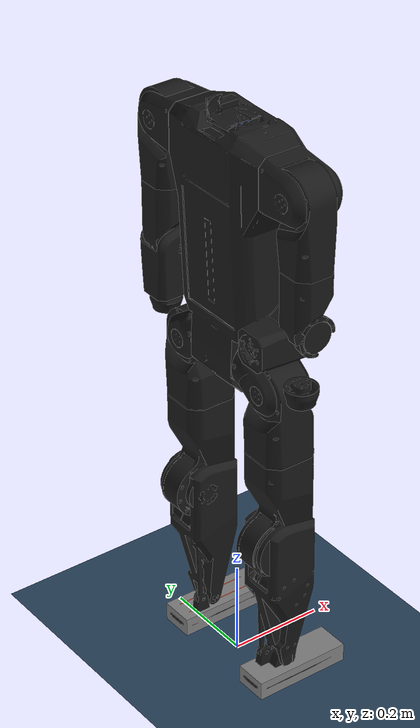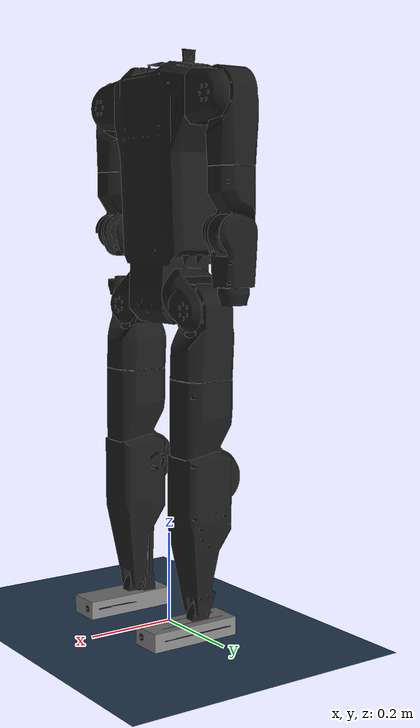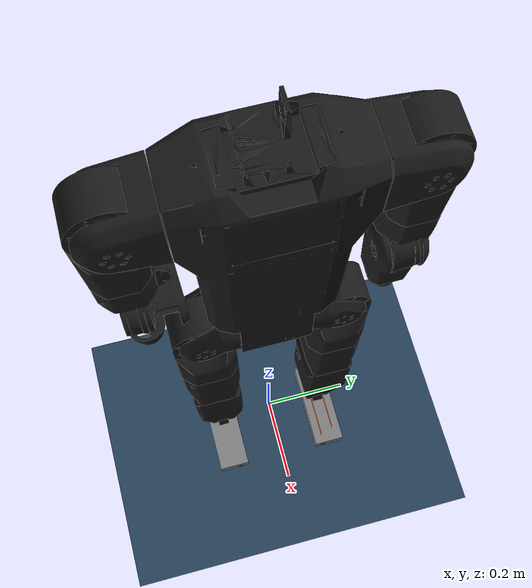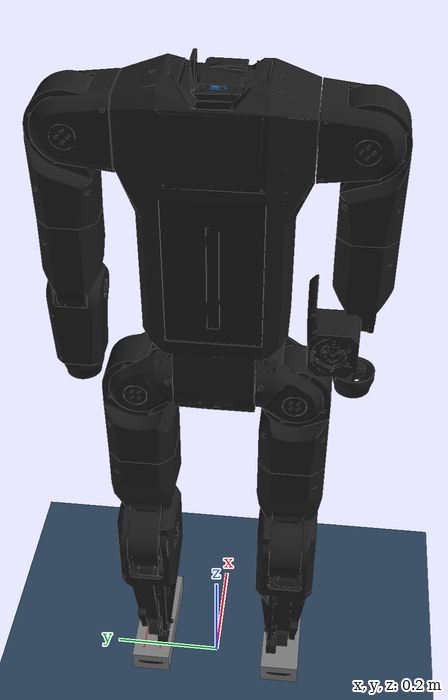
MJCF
<mujoco model="kbot scene">
  <include file="kbot.xml"/>

  <statistic center="1.0 0.7 1.0" extent="0.8"/>

  <visual>
    <headlight diffuse="0.6 0.6 0.6" ambient="0.1 0.1 0.1" specular="0.9 0.9 0.9"/>
    <rgba haze="0.15 0.25 0.35 1"/>
    <global azimuth="-140" elevation="-20"/>
  </visual>

  <asset>
    <texture type="skybox" builtin="flat" rgb1="0 0 0" rgb2="0 0 0" width="512" height="3072"/>
    <texture type="2d" name="groundplane" builtin="checker" mark="edge" rgb1="0.2 0.3 0.4" rgb2="0.1 0.2 0.3" markrgb="0.8 0.8 0.8" width="300" height="300"/>
    <material name="groundplane" texture="groundplane" texuniform="true" texrepeat="5 5" reflectance="0.2"/>
  </asset>

  <worldbody>
    <light pos="1 0 3.5" dir="0 0 -1" directional="true"/>
    <geom name="floor" size="0 0 0.05" type="plane" material="groundplane"/>
  </worldbody>
</mujoco>

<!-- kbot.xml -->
<mujoco model="kbotv2p0_headless">
  <default>
    <default class="robot">
      <default class="robstride_02">
        <joint armature="0.0042" frictionloss="0.1" actuatorfrcrange="-17.0 17.0" />
        <motor ctrlrange="-17.0 17.0" />
      </default>
      <default class="robstride_04">
        <joint armature="0.04" frictionloss="0.2" actuatorfrcrange="-120.0 120.0" />
        <motor ctrlrange="-120.0 120.0" />
      </default>
      <default class="robstride_03">
        <joint armature="0.02" frictionloss="0.2" actuatorfrcrange="-60.0 60.0" />
        <motor ctrlrange="-60.0 60.0" />
      </default>
      <default class="robstride_00">
        <joint armature="0.001" frictionloss="0.1" actuatorfrcrange="-14.0 14.0" />
        <motor ctrlrange="-14.0 14.0" />
      </default>
      <default class="visual">
        <geom material="visualgeom" contype="0" conaffinity="0" group="2" />
      </default>
      <default class="collision">
        <geom material="collision_material" condim="3" contype="0" conaffinity="1" priority="1" group="1" solref="0.005 1" friction="0.64" />
        <equality solimp="0.99 0.999 1e-05" solref="0.005 1" />
      </default>
    </default>
    <mesh maxhullvert="64" />
  </default>

  <compiler angle="radian" />

  <asset>
    <material name="base_material" rgba="1 0 0 1" />
    <material name="Torso_Side_Right_material" rgba="0.098039 0.098039 0.098039 1" />
    <material name="imu_material" rgba="0.231373 0.380392 0.705882 1" />
    <material name="default_material" rgba="0.7 0.7 0.7 1" />
    <material name="collision_material" rgba="1.0 0.28 0.1 0.9" />
    <mesh name="Torso_Side_Right.stl" file="meshes/Torso_Side_Right.stl" />
    <mesh name="KC_C_104R_PitchHardstopDriven.stl" file="meshes/KC_C_104R_PitchHardstopDriven.stl" />
    <mesh name="RS03_3.stl" file="meshes/RS03_3.stl" />
    <mesh name="KC_C_202R.stl" file="meshes/KC_C_202R.stl" />
    <mesh name="KC_C_401R_R_UpForearmDrive.stl" file="meshes/KC_C_401R_R_UpForearmDrive.stl" />
    <mesh name="KB_C_501X_Right_Bayonet_Adapter_Hard_Stop.stl" file="meshes/KB_C_501X_Right_Bayonet_Adapter_Hard_Stop.stl" />
    <mesh name="imu.stl" file="meshes/imu.stl" />
    <mesh name="KC_C_104L_PitchHardstopDriven.stl" file="meshes/KC_C_104L_PitchHardstopDriven.stl" />
    <mesh name="RS03_6.stl" file="meshes/RS03_6.stl" />
    <mesh name="KC_C_202L.stl" file="meshes/KC_C_202L.stl" />
    <mesh name="KC_C_401L_L_UpForearmDrive.stl" file="meshes/KC_C_401L_L_UpForearmDrive.stl" />
    <mesh name="KB_C_501X_Left_Bayonet_Adapter_Hard_Stop.stl" file="meshes/KB_C_501X_Left_Bayonet_Adapter_Hard_Stop.stl" />
    <mesh name="KC_D_102R_R_Hip_Yoke_Drive.stl" file="meshes/KC_D_102R_R_Hip_Yoke_Drive.stl" />
    <mesh name="RS03_4.stl" file="meshes/RS03_4.stl" />
    <mesh name="KC_D_301R_R_Femur_Lower_Drive.stl" file="meshes/KC_D_301R_R_Femur_Lower_Drive.stl" />
    <mesh name="KC_D_401R_R_Shin_Drive.stl" file="meshes/KC_D_401R_R_Shin_Drive.stl" />
    <mesh name="KB_D_501R_R_LEG_FOOT.collision.stl" file="meshes/KB_D_501R_R_LEG_FOOT.collision.stl" />
    <mesh name="KB_D_501R_R_LEG_FOOT.stl" file="meshes/KB_D_501R_R_LEG_FOOT.stl" />
    <mesh name="KC_D_102L_L_Hip_Yoke_Drive.stl" file="meshes/KC_D_102L_L_Hip_Yoke_Drive.stl" />
    <mesh name="RS03_5.stl" file="meshes/RS03_5.stl" />
    <mesh name="KC_D_301L_L_Femur_Lower_Drive.stl" file="meshes/KC_D_301L_L_Femur_Lower_Drive.stl" />
    <mesh name="KC_D_401L_L_Shin_Drive.stl" file="meshes/KC_D_401L_L_Shin_Drive.stl" />
    <mesh name="KB_D_501L_L_LEG_FOOT.collision.stl" file="meshes/KB_D_501L_L_LEG_FOOT.collision.stl" />
    <mesh name="KB_D_501L_L_LEG_FOOT.stl" file="meshes/KB_D_501L_L_LEG_FOOT.stl" />
  </asset>

  <worldbody>
    <body name="base" pos="0.00000000 0.00000000 1.01947904" quat="1 0 0 0" childclass="robot">
      <freejoint name="floating_base" />
      <geom name="base_visual" pos="0 -0.095 0" quat="0.7071054825112363 0.0 0.0 0.7071080798594735" material="base_material" type="sphere" size="0.01" class="visual" />
      <body name="Torso_Side_Right" pos="0 -0.095 0" quat="0.7071054825112363 0.0 0.0 0.7071080798594735">
        <inertial pos="0.093008 0.001559 -0.095495" quat="1.0 0.0 0.0 0.0" mass="12.368080" diaginertia="0.32902 0.355896 0.054395" />
        <geom name="Torso_Side_Right_visual" pos="0 0 0" quat="1.0 0.0 0.0 0.0" material="Torso_Side_Right_material" type="mesh" mesh="Torso_Side_Right.stl" class="visual" />
        <body name="KC_C_104R_PitchHardstopDriven" pos="-0.028031 0.000007 0.126021" quat="0.5000001633974483 0.4999999999999733 0.49999983660255165 0.4999999999999733">
          <joint name="dof_right_shoulder_pitch_03" type="hinge" ref="0.0" class="robstride_03" range="-3.141593 1.396263" axis="0 0 1" />
          <inertial pos="-0.004584 0.002745 -0.051222" quat="1.0 0.0 0.0 0.0" mass="0.584848" diaginertia="0.001182 0.001537 0.001416" />
          <geom name="KC_C_104R_PitchHardstopDriven_visual" pos="0 0 0" quat="1.0 0.0 0.0 0.0" material="Torso_Side_Right_material" type="mesh" mesh="KC_C_104R_PitchHardstopDriven.stl" class="visual" />
          <body name="RS03_3" pos="-0.024250 0 -0.080000" quat="-1.2247452309842457e-07 -0.7071068967259713 1.22474483074382e-07 -0.7071066656470838">
            <joint name="dof_right_shoulder_roll_03" type="hinge" ref="0.0" class="robstride_03" range="-1.658063 0.349066" axis="0 0 -1" />
            <inertial pos="-0.004944 0.042532 0.027432" quat="1.0 0.0 0.0 0.0" mass="1.676509" diaginertia="0.006831 0.001755 0.007324" />
            <geom name="RS03_3_visual" pos="0 0 0" quat="1.0 0.0 0.0 0.0" material="Torso_Side_Right_material" type="mesh" mesh="RS03_3.stl" class="visual" />
            <body name="KC_C_202R" pos="-0.013000 0.142000 0.030250" quat="0.7071068967259818 0.7071066656470943 0.0 0.0">
              <joint name="dof_right_shoulder_yaw_02" type="hinge" ref="0.0" class="robstride_02" range="-1.658063 1.658063" axis="0 0 1" />
              <inertial pos="0.003910 -0.004160 -0.101316" quat="1.0 0.0 0.0 0.0" mass="0.743508" diaginertia="0.00241 0.002208 0.000693" />
              <geom name="KC_C_202R_visual" pos="0 0 0" quat="1.0 0.0 0.0 0.0" material="Torso_Side_Right_material" type="mesh" mesh="KC_C_202R.stl" class="visual" />
              <body name="KC_C_401R_R_UpForearmDrive" pos="0.018500 -0.010000 -0.137000" quat="0.7071068967259818 0.0 0.7071066656470943 0.0">
                <joint name="dof_right_elbow_02" type="hinge" ref="0.0" class="robstride_02" range="0 2.478368" axis="0 0 -1" />
                <inertial pos="0.061999 0.015867 -0.012446" quat="1.0 0.0 0.0 0.0" mass="0.585204" diaginertia="0.000522 0.001021 0.00102" />
                <geom name="KC_C_401R_R_UpForearmDrive_visual" pos="0 0 0" quat="1.0 0.0 0.0 0.0" material="Torso_Side_Right_material" type="mesh" mesh="KC_C_401R_R_UpForearmDrive.stl" class="visual" />
                <body name="KB_C_501X_Right_Bayonet_Adapter_Hard_Stop" pos="0.103000 0.017350 -0.018000" quat="0.7071068967259818 0.0 -0.7071066656470943 0.0">
                  <joint name="dof_right_wrist_00" type="hinge" ref="0.0" class="robstride_00" range="-1.745329 1.745329" axis="0 0 1" />
                  <inertial pos="0.004187 0.000068 -0.019905" quat="1.0 0.0 0.0 0.0" mass="0.152198" diaginertia="6.1e-05 6.1e-05 8.4e-05" />
                  <geom name="KB_C_501X_Right_Bayonet_Adapter_Hard_Stop_visual" pos="0 0 0" quat="1.0 0.0 0.0 0.0" material="Torso_Side_Right_material" type="mesh" mesh="KB_C_501X_Right_Bayonet_Adapter_Hard_Stop.stl" class="visual" />
                </body>
              </body>
            </body>
          </body>
        </body>
        <body name="imu" pos="0.093118 -0.000341 0.188248" quat="0.7071068967259818 0.0 0.0 -0.7071066656470943">
          <inertial pos="-0.003012 0 0.002999" quat="1.0 0.0 0.0 0.0" mass="0.005700" diaginertia="1e-06 1e-06 2e-06" />
          <geom name="imu_visual" pos="0 0 0" quat="1.0 0.0 0.0 0.0" material="imu_material" type="mesh" mesh="imu.stl" class="visual" />
          <site name="imu_site" quat="1.0 0.0 0.0 0.0" pos="0.0 0.0 0.0" />
        </body>
        <body name="KC_C_104L_PitchHardstopDriven" pos="0.213969 0.000007 0.126021" quat="0.5000001633974483 -0.4999999999999733 -0.49999983660255165 0.4999999999999733">
          <joint name="dof_left_shoulder_pitch_03" type="hinge" ref="0.0" class="robstride_03" range="-1.396263 3.141593" axis="0 0 1" />
          <inertial pos="-0.004595 -0.002745 -0.051222" quat="1.0 0.0 0.0 0.0" mass="0.584843" diaginertia="0.001182 0.001536 0.001415" />
          <geom name="KC_C_104L_PitchHardstopDriven_visual" pos="0 0 0" quat="1.0 0.0 0.0 0.0" material="Torso_Side_Right_material" type="mesh" mesh="KC_C_104L_PitchHardstopDriven.stl" class="visual" />
          <body name="RS03_6" pos="-0.024250 0 -0.080000" quat="-1.2247452309842457e-07 -0.7071068967259713 -1.22474483074382e-07 0.7071066656470838">
            <joint name="dof_left_shoulder_roll_03" type="hinge" ref="0.0" class="robstride_03" range="-0.349066 1.658063" axis="0 0 1" />
            <inertial pos="0.004944 -0.042531 -0.027433" quat="1.0 0.0 0.0 0.0" mass="1.676479" diaginertia="0.00683 0.001755 0.007324" />
            <geom name="RS03_6_visual" pos="0 0 0" quat="1.0 0.0 0.0 0.0" material="Torso_Side_Right_material" type="mesh" mesh="RS03_6.stl" class="visual" />
            <body name="KC_C_202L" pos="0.013000 -0.142000 -0.030250" quat="0.7071068967259818 0.7071066656470943 0.0 0.0">
              <joint name="dof_left_shoulder_yaw_02" type="hinge" ref="0.0" class="robstride_02" range="-1.658063 1.658063" axis="0 0 -1" />
              <inertial pos="0.000925 0.006010 0.113327" quat="1.0 0.0 0.0 0.0" mass="0.579259" diaginertia="0.001537 0.001383 0.000471" />
              <geom name="KC_C_202L_visual" pos="0 0 0" quat="1.0 0.0 0.0 0.0" material="Torso_Side_Right_material" type="mesh" mesh="KC_C_202L.stl" class="visual" />
              <body name="KC_C_401L_L_UpForearmDrive" pos="-0.018500 0.010000 0.137000" quat="-1.2247452309842457e-07 -0.7071068967259713 -1.22474483074382e-07 0.7071066656470838">
                <joint name="dof_left_elbow_02" type="hinge" ref="0.0" class="robstride_02" range="-2.478368 0" axis="0 0 -1" />
                <inertial pos="-0.061998 0.015867 -0.012446" quat="1.0 0.0 0.0 0.0" mass="0.585219" diaginertia="0.000522 0.001021 0.00102" />
                <geom name="KC_C_401L_L_UpForearmDrive_visual" pos="0 0 0" quat="1.0 0.0 0.0 0.0" material="Torso_Side_Right_material" type="mesh" mesh="KC_C_401L_L_UpForearmDrive.stl" class="visual" />
                <body name="KB_C_501X_Left_Bayonet_Adapter_Hard_Stop" pos="-0.103000 0.017350 -0.018000" quat="-1.2247452309842457e-07 -0.7071068967259713 -1.22474483074382e-07 0.7071066656470838">
                  <joint name="dof_left_wrist_00" type="hinge" ref="0.0" class="robstride_00" range="-1.745329 1.745329" axis="0 0 -1" />
                  <inertial pos="-0.004187 -0.000068 0.019905" quat="1.0 0.0 0.0 0.0" mass="0.152198" diaginertia="6.1e-05 6.1e-05 8.4e-05" />
                  <geom name="KB_C_501X_Left_Bayonet_Adapter_Hard_Stop_visual" pos="0 0 0" quat="1.0 0.0 0.0 0.0" material="Torso_Side_Right_material" type="mesh" mesh="KB_C_501X_Left_Bayonet_Adapter_Hard_Stop.stl" class="visual" />
                </body>
              </body>
            </body>
          </body>
        </body>
        <body name="KC_D_102R_R_Hip_Yoke_Drive" pos="0.037469 0.000007 -0.284479" quat="0.5000001633974483 0.4999999999999733 0.49999983660255165 0.4999999999999733">
          <joint name="dof_right_hip_pitch_04" type="hinge" ref="0.0" class="robstride_04" range="-2.216568 1.047198" axis="0 0 1" />
          <inertial pos="-0.005644 -0.004227 -0.038197" quat="1.0 0.0 0.0 0.0" mass="0.530428" diaginertia="0.00088 0.001182 0.001271" />
          <geom name="KC_D_102R_R_Hip_Yoke_Drive_visual" pos="0 0 0" quat="1.0 0.0 0.0 0.0" material="Torso_Side_Right_material" type="mesh" mesh="KC_D_102R_R_Hip_Yoke_Drive.stl" class="visual" />
          <body name="RS03_4" pos="-0.028250 -0.030000 -0.071000" quat="-1.2247452309842457e-07 0.7071068967259713 1.22474483074382e-07 0.7071066656470838">
            <joint name="dof_right_hip_roll_03" type="hinge" ref="0.0" class="robstride_03" range="-2.268928 0.209440" axis="0 0 -1" />
            <inertial pos="-0.000249 0.058017 0.025580" quat="1.0 0.0 0.0 0.0" mass="2.373184" diaginertia="0.010217 0.003255 0.010667" />
            <geom name="RS03_4_visual" pos="0 0 0" quat="1.0 0.0 0.0 0.0" material="Torso_Side_Right_material" type="mesh" mesh="RS03_4.stl" class="visual" />
            <body name="KC_D_301R_R_Femur_Lower_Drive" pos="0 0.143000 0.024250" quat="0.7071068967259818 -0.7071066656470943 0.0 0.0">
              <joint name="dof_right_hip_yaw_03" type="hinge" ref="0.0" class="robstride_03" range="-1.570796 1.570796" axis="0 0 -1" />
              <inertial pos="-0.001014 -0.013387 0.171456" quat="1.0 0.0 0.0 0.0" mass="2.343635" diaginertia="0.015645 0.014172 0.004016" />
              <geom name="KC_D_301R_R_Femur_Lower_Drive_visual" pos="0 0 0" quat="1.0 0.0 0.0 0.0" material="Torso_Side_Right_material" type="mesh" mesh="KC_D_301R_R_Femur_Lower_Drive.stl" class="visual" />
              <body name="KC_D_401R_R_Shin_Drive" pos="0.020500 -0.021000 0.212000" quat="0.5000001633974483 0.4999999999999733 -0.49999983660255165 -0.4999999999999733">
                <joint name="dof_right_knee_04" type="hinge" ref="0.0" class="robstride_04" range="-2.705260 0" axis="0 0 1" />
                <inertial pos="-0.024549 0.104152 0.018182" quat="1.0 0.0 0.0 0.0" mass="1.670592" diaginertia="0.014672 0.002924 0.014592" />
                <geom name="KC_D_401R_R_Shin_Drive_visual" pos="0 0 0" quat="1.0 0.0 0.0 0.0" material="Torso_Side_Right_material" type="mesh" mesh="KC_D_401R_R_Shin_Drive.stl" class="visual" />
                <body name="KB_D_501R_R_LEG_FOOT" pos="-0.030000 0.290000 0.035100" quat="1.0 0.0 0.0 0.0">
                  <joint name="dof_right_ankle_02" type="hinge" ref="0.0" class="robstride_02" range="-0.226893 1.256637" axis="0 0 1" />
                  <inertial pos="-0.017200 0.031958 -0.015781" quat="1.0 0.0 0.0 0.0" mass="0.601661" diaginertia="0.000357 0.001944 0.00188" />
                  <geom name="KB_D_501R_R_LEG_FOOT_visual" pos="0 0 0" quat="1.0 0.0 0.0 0.0" material="Torso_Side_Right_material" type="mesh" mesh="KB_D_501R_R_LEG_FOOT.stl" class="visual" />
                  <geom name="KB_D_501R_R_LEG_FOOT_collision_capsule_0" type="capsule" quat="1.000000 0.000000 0.000000 0.000000" fromto="-0.113899 0.038000 -0.029830 0.056761 0.038000 -0.029830" size="0.020000 0.105330" material="collision_material" class="collision" />
                  <geom name="KB_D_501R_R_LEG_FOOT_visual_capsule_0" type="capsule" quat="1.000000 0.000000 0.000000 0.000000" fromto="-0.113899 0.038000 -0.029830 0.056761 0.038000 -0.029830" size="0.020000 0.105330" material="Torso_Side_Right_material" class="visual" />
                  <geom name="KB_D_501R_R_LEG_FOOT_collision_capsule_1" type="capsule" quat="1.000000 0.000000 0.000000 0.000000" fromto="-0.107318 0.038000 0.001538 0.055951 0.038000 0.001538" size="0.020000 0.105330" material="collision_material" class="collision" />
                  <geom name="KB_D_501R_R_LEG_FOOT_visual_capsule_1" type="capsule" quat="1.000000 0.000000 0.000000 0.000000" fromto="-0.107318 0.038000 0.001538 0.055951 0.038000 0.001538" size="0.020000 0.105330" material="Torso_Side_Right_material" class="visual" />
                  <site name="right_foot" size="0.105 0.02 0.036" pos="-0.0283 0.038 -0.014" type="box" />
                </body>
              </body>
            </body>
          </body>
        </body>
        <body name="KC_D_102L_L_Hip_Yoke_Drive" pos="0.147969 0.000007 -0.284479" quat="0.5000001633974483 -0.4999999999999733 -0.49999983660255165 0.4999999999999733">
          <joint name="dof_left_hip_pitch_04" type="hinge" ref="0.0" class="robstride_04" range="-1.047198 2.216568" axis="0 0 1" />
          <inertial pos="-0.005644 0.004227 -0.038197" quat="1.0 0.0 0.0 0.0" mass="0.530424" diaginertia="0.00088 0.001182 0.001271" />
          <geom name="KC_D_102L_L_Hip_Yoke_Drive_visual" pos="0 0 0" quat="1.0 0.0 0.0 0.0" material="Torso_Side_Right_material" type="mesh" mesh="KC_D_102L_L_Hip_Yoke_Drive.stl" class="visual" />
          <body name="RS03_5" pos="-0.028250 0.030000 -0.071000" quat="0.7071068967259818 0.0 0.7071066656470943 0.0">
            <joint name="dof_left_hip_roll_03" type="hinge" ref="0.0" class="robstride_03" range="-0.209440 2.268928" axis="0 0 -1" />
            <inertial pos="0.000249 0.058017 0.025578" quat="1.0 0.0 0.0 0.0" mass="2.373239" diaginertia="0.010217 0.003255 0.010667" />
            <geom name="RS03_5_visual" pos="0 0 0" quat="1.0 0.0 0.0 0.0" material="Torso_Side_Right_material" type="mesh" mesh="RS03_5.stl" class="visual" />
            <body name="KC_D_301L_L_Femur_Lower_Drive" pos="0 0.143000 0.024250" quat="0.7071068967259818 -0.7071066656470943 0.0 0.0">
              <joint name="dof_left_hip_yaw_03" type="hinge" ref="0.0" class="robstride_03" range="-1.570796 1.570796" axis="0 0 -1" />
              <inertial pos="0.001013 -0.013386 0.171458" quat="1.0 0.0 0.0 0.0" mass="2.343629" diaginertia="0.015644 0.014172 0.004016" />
              <geom name="KC_D_301L_L_Femur_Lower_Drive_visual" pos="0 0 0" quat="1.0 0.0 0.0 0.0" material="Torso_Side_Right_material" type="mesh" mesh="KC_D_301L_L_Femur_Lower_Drive.stl" class="visual" />
              <body name="KC_D_401L_L_Shin_Drive" pos="-0.020500 -0.021000 0.212000" quat="0.5000001633974483 -0.4999999999999733 0.49999983660255165 -0.4999999999999733">
                <joint name="dof_left_knee_04" type="hinge" ref="0.0" class="robstride_04" range="0 2.705260" axis="0 0 1" />
                <inertial pos="-0.024550 -0.104154 0.018183" quat="1.0 0.0 0.0 0.0" mass="1.670535" diaginertia="0.014672 0.002924 0.014592" />
                <geom name="KC_D_401L_L_Shin_Drive_visual" pos="0 0 0" quat="1.0 0.0 0.0 0.0" material="Torso_Side_Right_material" type="mesh" mesh="KC_D_401L_L_Shin_Drive.stl" class="visual" />
                <body name="KB_D_501L_L_LEG_FOOT" pos="-0.030000 -0.290000 0.035100" quat="-1.7320510330969933e-07 -0.999999999999985 -0.0 0.0">
                  <joint name="dof_left_ankle_02" type="hinge" ref="0.0" class="robstride_02" range="-1.256637 0.226893" axis="0 0 -1" />
                  <inertial pos="-0.017203 0.031964 0.015780" quat="1.0 0.0 0.0 0.0" mass="0.601886" diaginertia="0.000357 0.001945 0.001881" />
                  <geom name="KB_D_501L_L_LEG_FOOT_visual" pos="0 0 0" quat="1.0 0.0 0.0 0.0" material="Torso_Side_Right_material" type="mesh" mesh="KB_D_501L_L_LEG_FOOT.stl" class="visual" />
                  <geom name="KB_D_501L_L_LEG_FOOT_collision_capsule_0" type="capsule" quat="1.000000 0.000000 0.000000 0.000000" fromto="-0.100321 0.037847 -0.001769 0.056310 0.037847 -0.001769" size="0.020000 0.104567" material="collision_material" class="collision" />
                  <geom name="KB_D_501L_L_LEG_FOOT_visual_capsule_0" type="capsule" quat="1.000000 0.000000 0.000000 0.000000" fromto="-0.100321 0.037847 -0.001769 0.056310 0.037847 -0.001769" size="0.020000 0.104567" material="Torso_Side_Right_material" class="visual" />
                  <geom name="KB_D_501L_L_LEG_FOOT_collision_capsule_1" type="capsule" quat="1.000000 0.000000 0.000000 0.000000" fromto="-0.112825 0.037847 0.029830 0.055951 0.037847 0.029830" size="0.020000 0.104567" material="collision_material" class="collision" />
                  <geom name="KB_D_501L_L_LEG_FOOT_visual_capsule_1" type="capsule" quat="1.000000 0.000000 0.000000 0.000000" fromto="-0.112825 0.037847 0.029830 0.055951 0.037847 0.029830" size="0.020000 0.104567" material="Torso_Side_Right_material" class="visual" />
                  <site name="left_foot" size="0.105 0.02 0.036" pos="-0.0283 0.038 0.014" type="box" />
                </body>
              </body>
            </body>
          </body>
        </body>
      </body>
      <site name="base_site" pos="0 0 0" quat="1 0 0 0" />
      <camera name="front_camera" mode="track" fovy="90.0" quat="4.329780281177467e-17 4.329780281177466e-17 0.7071067811865475 0.7071067811865476" pos="0.0 2.0 0.5" />
      <camera name="side_camera" mode="track" fovy="90.0" quat="-0.5 -0.4999999999999999 0.5 0.5000000000000001" pos="-2.0 0.0 0.5" />
    </body>
  </worldbody>

  <actuator>
    <motor name="dof_left_hip_pitch_04_ctrl" joint="dof_left_hip_pitch_04" class="robstride_04" />
    <motor name="dof_left_hip_roll_03_ctrl" joint="dof_left_hip_roll_03" class="robstride_03" />
    <motor name="dof_left_hip_yaw_03_ctrl" joint="dof_left_hip_yaw_03" class="robstride_03" />
    <motor name="dof_left_knee_04_ctrl" joint="dof_left_knee_04" class="robstride_04" />
    <motor name="dof_left_ankle_02_ctrl" joint="dof_left_ankle_02" class="robstride_02" />
    <motor name="dof_left_shoulder_pitch_03_ctrl" joint="dof_left_shoulder_pitch_03" class="robstride_03" />
    <motor name="dof_left_shoulder_roll_03_ctrl" joint="dof_left_shoulder_roll_03" class="robstride_03" />
    <motor name="dof_left_shoulder_yaw_02_ctrl" joint="dof_left_shoulder_yaw_02" class="robstride_02" />
    <motor name="dof_left_elbow_02_ctrl" joint="dof_left_elbow_02" class="robstride_02" />
    <motor name="dof_left_wrist_00_ctrl" joint="dof_left_wrist_00" class="robstride_00" />
    <motor name="dof_right_hip_pitch_04_ctrl" joint="dof_right_hip_pitch_04" class="robstride_04" />
    <motor name="dof_right_hip_roll_03_ctrl" joint="dof_right_hip_roll_03" class="robstride_03" />
    <motor name="dof_right_hip_yaw_03_ctrl" joint="dof_right_hip_yaw_03" class="robstride_03" />
    <motor name="dof_right_knee_04_ctrl" joint="dof_right_knee_04" class="robstride_04" />
    <motor name="dof_right_ankle_02_ctrl" joint="dof_right_ankle_02" class="robstride_02" />
    <motor name="dof_right_shoulder_pitch_03_ctrl" joint="dof_right_shoulder_pitch_03" class="robstride_03" />
    <motor name="dof_right_shoulder_roll_03_ctrl" joint="dof_right_shoulder_roll_03" class="robstride_03" />
    <motor name="dof_right_shoulder_yaw_02_ctrl" joint="dof_right_shoulder_yaw_02" class="robstride_02" />
    <motor name="dof_right_elbow_02_ctrl" joint="dof_right_elbow_02" class="robstride_02" />
    <motor name="dof_right_wrist_00_ctrl" joint="dof_right_wrist_00" class="robstride_00" />
  </actuator>

  <contact />

  <sensor>
    <framepos name="base_site_pos" objtype="site" objname="base_site" />
    <framequat name="base_site_quat" objtype="site" objname="base_site" />
    <framelinvel name="base_site_linvel" objtype="site" objname="base_site" />
    <frameangvel name="base_site_angvel" objtype="site" objname="base_site" />
    <velocimeter name="base_site_vel" site="base_site" />
    <accelerometer name="imu_acc" site="imu_site" noise="0.01" />
    <gyro name="imu_gyro" site="imu_site" noise="0.01" />
    <magnetometer name="imu_mag" site="imu_site" noise="0.05" />
    <framepos name="imu_site_pos" objtype="site" objname="imu_site" />
    <framequat name="imu_site_quat" objtype="site" objname="imu_site" />
    <framelinvel name="imu_site_linvel" objtype="site" objname="imu_site" />
    <frameangvel name="imu_site_angvel" objtype="site" objname="imu_site" />
    <velocimeter name="imu_site_vel" site="imu_site" />
    <force name="left_foot_force" site="left_foot" />
    <force name="right_foot_force" site="right_foot" />
    <touch name="left_foot_touch" site="left_foot" />
    <touch name="right_foot_touch" site="right_foot" />
  </sensor>
</mujoco>
